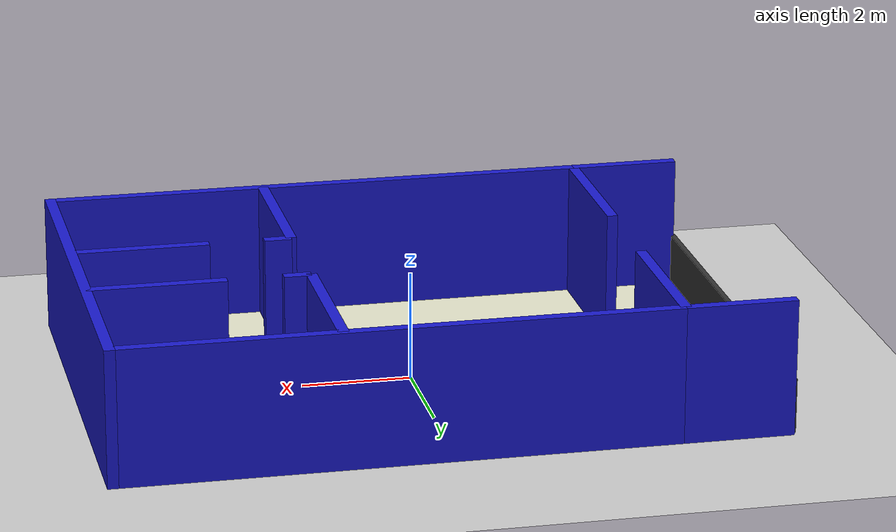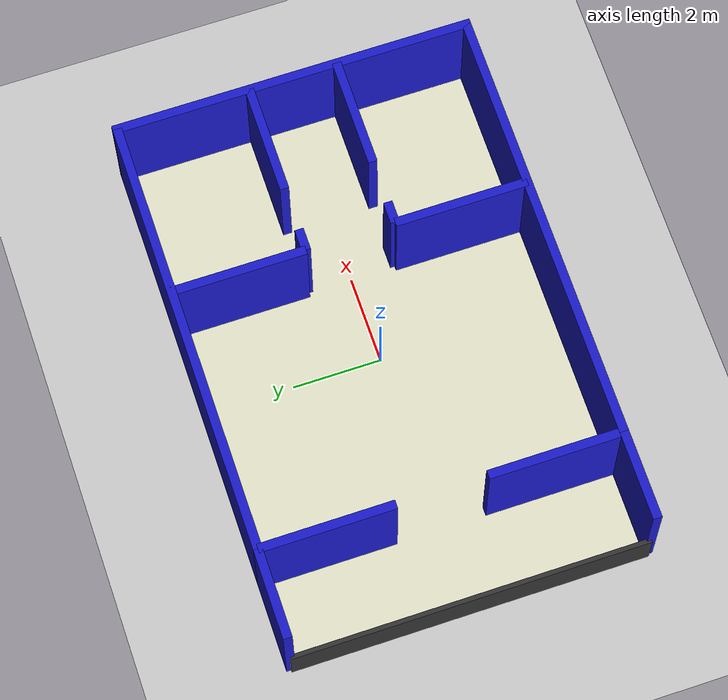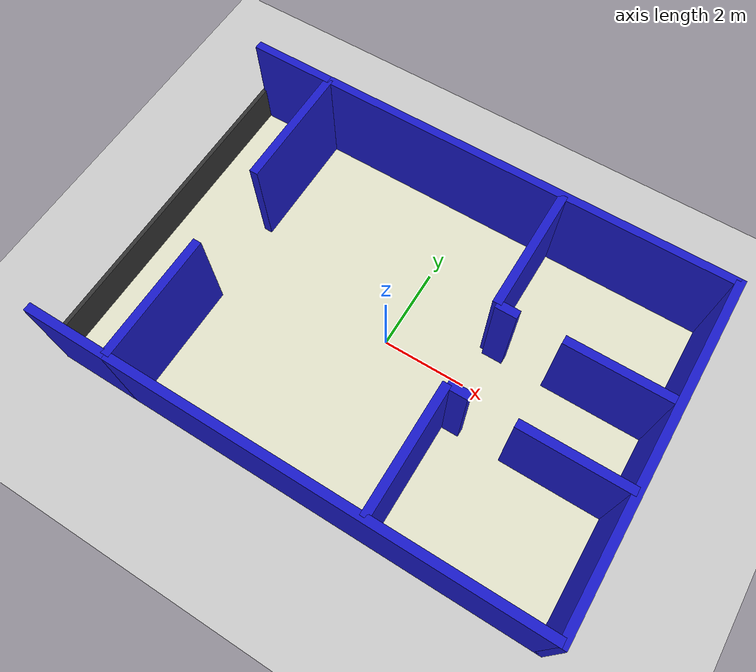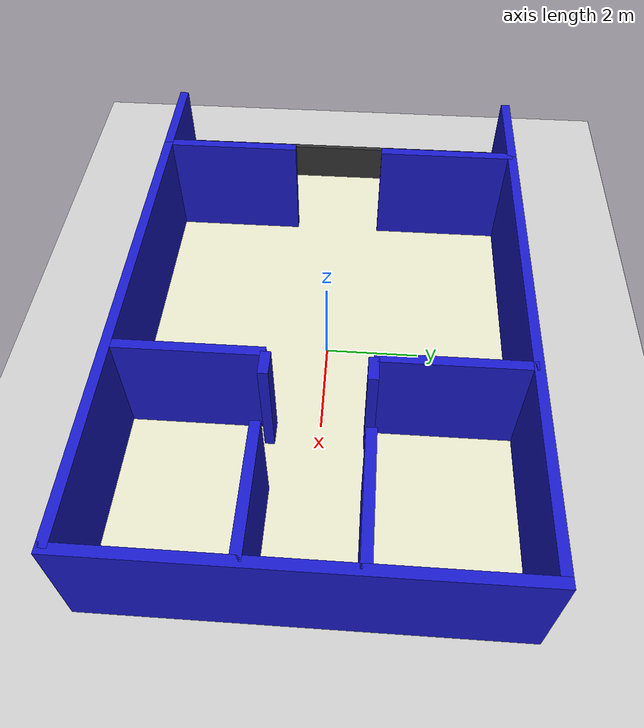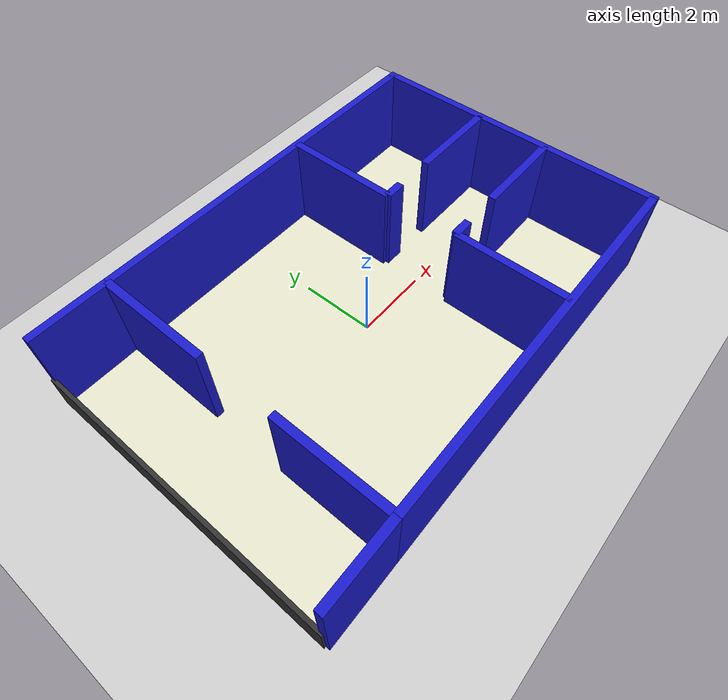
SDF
<?xml version="1.0" ?>
<sdf version="1.7">

    <world name="skidbot_world">

        <physics name="1ms" type="ignored">
            <max_step_size>0.001</max_step_size>
            <real_time_factor>1.0</real_time_factor>
        </physics>

        <plugin
            filename="gz-sim-physics-system"
            name="gz::sim::systems::Physics">
        </plugin>

        <plugin
            filename="gz-sim-user-commands-system"
            name="gz::sim::systems::UserCommands">
        </plugin>

        <plugin
            filename="gz-sim-scene-broadcaster-system"
            name="gz::sim::systems::SceneBroadcaster">
        </plugin>

        <!-- IMU system plugin -->
        <plugin filename="gz-sim-imu-system"
            name="gz::sim::systems::Imu">
        </plugin>

        <light type="directional" name="sun">
            <cast_shadows>true</cast_shadows>
            <pose>0 0 10 0 0 0</pose>
            <diffuse>0.8 0.8 0.8 1</diffuse>
            <specular>0.2 0.2 0.2 1</specular>
            <attenuation>
                <range>1000</range>
                <constant>0.9</constant>
                <linear>0.01</linear>
                <quadratic>0.001</quadratic>
            </attenuation>
            <direction>-0.5 0.1 -0.9</direction>
        </light>

        <model name="ground_plane">
            <static>true</static>
            <link name="link">
                <collision name="collision">
                    <geometry>
                        <plane>
                            <normal>0 0 1</normal>
                            <size>100 100</size>
                        </plane>
                    </geometry>
                    <surface>
                        <friction>
                            <ode>
                                <mu>100</mu>
                                <mu2>50</mu2>
                            </ode>
                        </friction>
                    </surface>
                </collision>
                <visual name="visual">
                    <cast_shadows>false</cast_shadows>
                    <geometry>
                        <plane>
                            <normal>0 0 1</normal>
                            <size>100 100</size>
                        </plane>
                    </geometry>
                    <material>
                        <script>
                            <uri>file://media/materials/scripts/gazebo.material</uri>
                            <name>Gazebo/Grey</name>
                        </script>
                    </material>
                </visual>
            </link>
        </model>

        <include>
            <uri>model://apartment</uri>
        </include>
    </world>
</sdf>

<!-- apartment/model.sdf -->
<sdf version="1.6">
  <model name="apartment_blue_walls">
    <link name="apartment_base">

      <collision name="floor_collision">
        <geometry>
          <box>
            <size>12 8 0.1</size>
          </box>
        </geometry>
        <pose>0 0 0 0 0 0</pose>
      </collision>
      <visual name="floor_visual">
        <geometry>
          <box>
            <size>12 8 0.1</size>
          </box>
        </geometry>
        <pose>0 0 0 0 0 0</pose>
        <material>
          <ambient>0.9 0.9 0.8 1</ambient> <diffuse>0.9 0.9 0.8 1</diffuse>
          <specular>0.1 0.1 0.1 1</specular>
        </material>
      </visual>

      <collision name="north_wall_collision">
        <geometry>
          <box>
            <size>10 0.2 2.5</size>
          </box>
        </geometry>
        <pose>1 4 1.25 0 0 0</pose>
      </collision>
      <visual name="north_wall_visual">
        <geometry>
          <box>
            <size>10 0.2 2.5</size>
          </box>
        </geometry>
        <pose>1 4 1.25 0 0 0</pose>
        <material>
          <ambient>0.1 0.1 0.8 1</ambient>
          <diffuse>0.1 0.1 0.8 1</diffuse>
          <specular>0.1 0.1 0.1 1</specular>
          </material>
      </visual>

      <collision name="south_wall_collision">
        <geometry>
          <box>
            <size>10 0.2 2.5</size>
          </box>
        </geometry>
        <pose>1 -4 1.25 0 0 0</pose>
      </collision>
      <visual name="south_wall_visual">
        <geometry>
          <box>
            <size>10 0.2 2.5</size>
          </box>
        </geometry>
        <pose>1 -4 1.25 0 0 0</pose>
        <material>
          <ambient>0.1 0.1 0.8 1</ambient>
          <diffuse>0.1 0.1 0.8 1</diffuse>
          <specular>0.1 0.1 0.1 1</specular>
        </material>
      </visual>

      <collision name="east_wall_collision">
        <geometry>
          <box>
            <size>0.2 8.2 2.5</size>
          </box>
        </geometry>
        <pose>6 0 1.25 0 0 0</pose>
      </collision>
      <visual name="east_wall_visual">
        <geometry>
          <box>
            <size>0.2 8.2 2.5</size>
          </box>
        </geometry>
        <pose>6 0 1.25 0 0 0</pose>
        <material>
          <ambient>0.1 0.1 0.8 1</ambient>
          <diffuse>0.1 0.1 0.8 1</diffuse>
          <specular>0.1 0.1 0.1 1</specular>
        </material>
      </visual>

      <collision name="balcony_north_wall_collision">
        <geometry>
          <box>
            <size>2.0 0.2 2.5</size>
          </box>
        </geometry>
        <pose>-5 4 1.25 0 0 0</pose>
      </collision>
      <visual name="balcony_north_wall_visual">
        <geometry>
          <box>
            <size>2.0 0.2 2.5</size>
          </box>
        </geometry>
        <pose>-5 4 1.25 0 0 0</pose>
        <material>
          <ambient>0.1 0.1 0.8 1</ambient>
          <diffuse>0.1 0.1 0.8 1</diffuse>
          <specular>0.1 0.1 0.1 1</specular>
        </material>
      </visual>

      <collision name="balcony_south_wall_collision">
        <geometry>
          <box>
            <size>2.0 0.2 2.5</size>
          </box>
        </geometry>
        <pose>-5 -4 1.25 0 0 0</pose>
      </collision>
      <visual name="balcony_south_wall_visual">
        <geometry>
          <box>
            <size>2.0 0.2 2.5</size>
          </box>
        </geometry>
        <pose>-5 -4 1.25 0 0 0</pose>
        <material>
          <ambient>0.1 0.1 0.8 1</ambient>
          <diffuse>0.1 0.1 0.8 1</diffuse>
          <specular>0.1 0.1 0.1 1</specular>
        </material>
      </visual>

      <collision name="balcony_sep_top">
        <geometry>
          <box>
            <size>0.2 3.0 2.5</size>
          </box>
        </geometry>
        <pose>-4 2.5 1.25 0 0 0</pose>
      </collision>
      <visual name="balcony_sep_top_vis">
        <geometry>
          <box>
            <size>0.2 3.0 2.5</size>
          </box>
        </geometry>
        <pose>-4 2.5 1.25 0 0 0</pose>
        <material>
          <ambient>0.1 0.1 0.8 1</ambient>
          <diffuse>0.1 0.1 0.8 1</diffuse>
          <specular>0.1 0.1 0.1 1</specular>
        </material>
      </visual>

      <collision name="balcony_sep_bottom">
        <geometry>
          <box>
            <size>0.2 3.0 2.5</size>
          </box>
        </geometry>
        <pose>-4 -2.5 1.25 0 0 0</pose>
      </collision>
      <visual name="balcony_sep_bottom_vis">
        <geometry>
          <box>
            <size>0.2 3.0 2.5</size>
          </box>
        </geometry>
        <pose>-4 -2.5 1.25 0 0 0</pose>
        <material>
          <ambient>0.1 0.1 0.8 1</ambient>
          <diffuse>0.1 0.1 0.8 1</diffuse>
          <specular>0.1 0.1 0.1 1</specular>
        </material>
      </visual>

      <collision name="balcony_railing">
        <geometry>
          <box>
            <size>0.1 8.0 1.0</size>
          </box>
        </geometry>
        <pose>-6 0 0.5 0 0 0</pose>
      </collision>
      <visual name="balcony_railing_vis">
        <geometry>
          <box>
            <size>0.1 8.0 1.0</size>
          </box>
        </geometry>
        <pose>-6 0 0.5 0 0 0</pose>
        <material>
          <ambient>0.2 0.2 0.2 1</ambient>
          <diffuse>0.2 0.2 0.2 1</diffuse>
        </material>
      </visual>

      <collision name="spine_top_collision">
        <geometry>
          <box>
            <size>0.2 3.0 2.5</size>
          </box>
        </geometry>
        <pose>2 2.5 1.25 0 0 0</pose>
      </collision>
      <visual name="spine_top_visual">
        <geometry>
          <box>
            <size>0.2 3.0 2.5</size>
          </box>
        </geometry>
        <pose>2 2.5 1.25 0 0 0</pose>
        <material>
          <ambient>0.1 0.1 0.8 1</ambient>
          <diffuse>0.1 0.1 0.8 1</diffuse>
          <specular>0.1 0.1 0.1 1</specular>
        </material>
      </visual>

      <collision name="spine_bottom_collision">
        <geometry>
          <box>
            <size>0.2 3.0 2.5</size>
          </box>
        </geometry>
        <pose>2 -2.5 1.25 0 0 0</pose>
      </collision>
      <visual name="spine_bottom_visual">
        <geometry>
          <box>
            <size>0.2 3.0 2.5</size>
          </box>
        </geometry>
        <pose>2 -2.5 1.25 0 0 0</pose>
        <material>
          <ambient>0.1 0.1 0.8 1</ambient>
          <diffuse>0.1 0.1 0.8 1</diffuse>
          <specular>0.1 0.1 0.1 1</specular>
        </material>
      </visual>

      <collision name="bath_door_frame_1">
        <geometry>
          <box>
            <size>0.5 0.2 2.5</size>
          </box>
        </geometry>
        <pose>2.25 1.0 1.25 0 0 0</pose>
      </collision>
      <visual name="bath_door_frame_1_vis">
        <geometry>
          <box>
            <size>0.5 0.2 2.5</size>
          </box>
        </geometry>
        <pose>2.25 1.0 1.25 0 0 0</pose>
        <material>
          <ambient>0.1 0.1 0.8 1</ambient>
          <diffuse>0.1 0.1 0.8 1</diffuse>
          <specular>0.1 0.1 0.1 1</specular>
        </material>
      </visual>

      <collision name="bath_door_frame_2">
        <geometry>
          <box>
            <size>2.5 0.2 2.5</size>
          </box>
        </geometry>
        <pose>4.75 1.0 1.25 0 0 0</pose>
      </collision>
      <visual name="bath_door_frame_2_vis">
        <geometry>
          <box>
            <size>2.5 0.2 2.5</size>
          </box>
        </geometry>
        <pose>4.75 1.0 1.25 0 0 0</pose>
        <material>
          <ambient>0.1 0.1 0.8 1</ambient>
          <diffuse>0.1 0.1 0.8 1</diffuse>
          <specular>0.1 0.1 0.1 1</specular>
        </material>
      </visual>

      <collision name="bed_door_frame_1">
        <geometry>
          <box>
            <size>0.5 0.2 2.5</size>
          </box>
        </geometry>
        <pose>2.25 -1.0 1.25 0 0 0</pose>
      </collision>
      <visual name="bed_door_frame_1_vis">
        <geometry>
          <box>
            <size>0.5 0.2 2.5</size>
          </box>
        </geometry>
        <pose>2.25 -1.0 1.25 0 0 0</pose>
        <material>
          <ambient>0.1 0.1 0.8 1</ambient>
          <diffuse>0.1 0.1 0.8 1</diffuse>
          <specular>0.1 0.1 0.1 1</specular>
        </material>
      </visual>

      <collision name="bed_door_frame_2">
        <geometry>
          <box>
            <size>2.5 0.2 2.5</size>
          </box>
        </geometry>
        <pose>4.75 -1.0 1.25 0 0 0</pose>
      </collision>
      <visual name="bed_door_frame_2_vis">
        <geometry>
          <box>
            <size>2.5 0.2 2.5</size>
          </box>
        </geometry>
        <pose>4.75 -1.0 1.25 0 0 0</pose>
        <material>
          <ambient>0.1 0.1 0.8 1</ambient>
          <diffuse>0.1 0.1 0.8 1</diffuse>
          <specular>0.1 0.1 0.1 1</specular>
        </material>
      </visual>

    </link>
    <static>true</static>
  </model>
</sdf>
